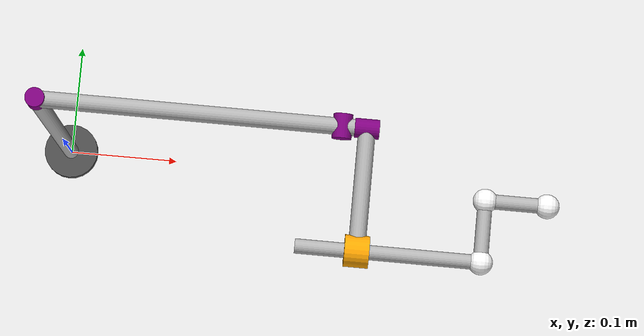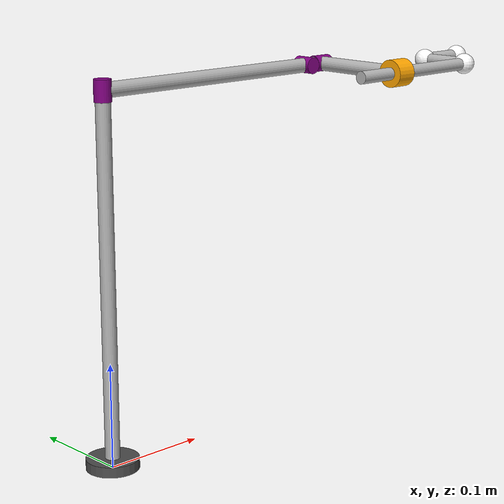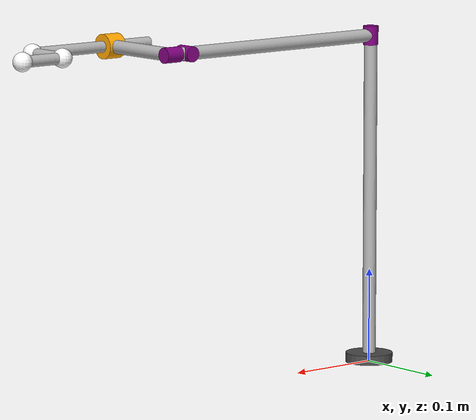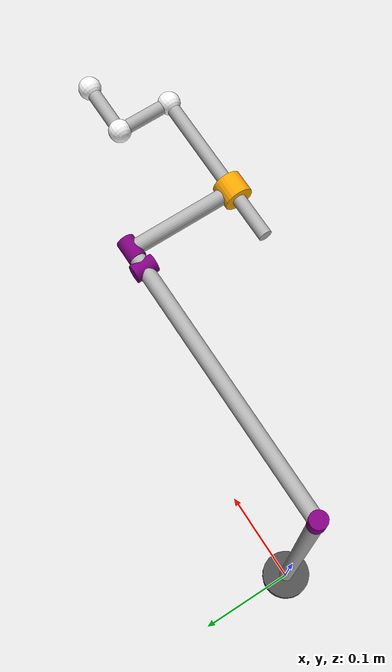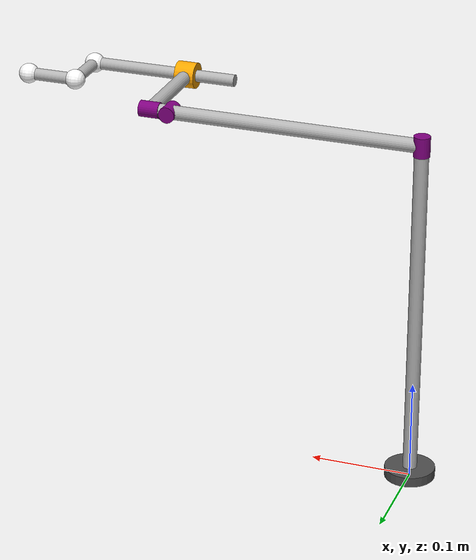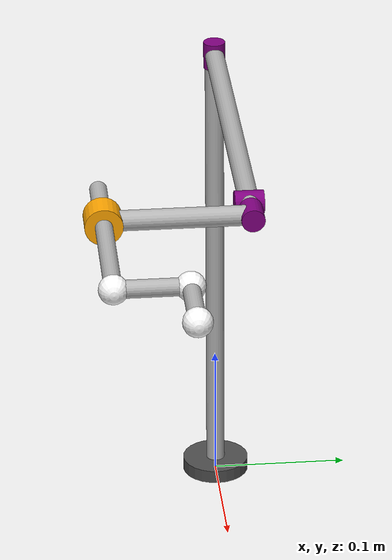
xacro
<?xml version="1.0"?>

<robot xmlns:xacro="http://www.ros.org/wiki/xacro" name="desktop_manipulator">

  <!-- ==================== PARAMETERS ==================== -->
  <xacro:property name="L1" value="0.35"/>
  <xacro:property name="L2" value="0.25"/>
  <xacro:property name="L3" value="0.02"/>
  <xacro:property name="L4" value="0.10"/>

  <!-- Visual radii (matching your PyVista code, converted to metres) -->
  <xacro:property name="base_height"       value="0.01"/>
  <xacro:property name="base_radius"        value="0.025"/>
  <xacro:property name="link_radius"       value="0.007"/>
  <xacro:property name="hub_radius"        value="0.008"/>
  <xacro:property name="hub_len"           value="0.020"/>
  <xacro:property name="teles_outer_radius" value="0.013"/>
  <xacro:property name="teles_inner_radius" value="0.006"/>
  <xacro:property name="teles_outer_len"   value="0.020"/>
  <xacro:property name="teles_inner_len"   value="0.150"/>
  <xacro:property name="ee_radius"         value="0.006"/>
  <xacro:property name="ball_radius"       value="0.010"/>

  <!-- Prismatic joint limits (cm -> m) -->
  <xacro:property name="d4_min" value="0.05"/>
  <xacro:property name="d4_max" value="0.15"/>

  <!-- Colours -->
  <xacro:property name="link_color_r" value="0.7"/>
  <xacro:property name="link_color_g" value="0.7"/>
  <xacro:property name="link_color_b" value="0.7"/>
  <xacro:property name="hub_color_r"  value="0.5"/>
  <xacro:property name="hub_color_g"  value="0.0"/>
  <xacro:property name="hub_color_b"  value="0.5"/>
  <xacro:property name="teles_outer_r" value="1.0"/>
  <xacro:property name="teles_outer_g" value="0.65"/>
  <xacro:property name="teles_outer_b" value="0.0"/>

  <!-- ==================== MATERIALS ==================== -->
  <material name="silver">
    <color rgba="0.7 0.7 0.7 1.0"/>
  </material>

  <material name="purple">
    <color rgba="0.5 0.0 0.5 1.0"/>
  </material>
  <material name="orange">
    <color rgba="1.0 0.65 0.0 1.0"/>
  </material>
  <material name="dark_grey">
    <color rgba="0.3 0.3 0.3 1.0"/>
  </material>
  <material name="red_transparent">
    <color rgba="1.0 0.0 0.0 0.4"/>
  </material>
  <material name="white">
    <color rgba="1.0 1.0 1.0 1.0"/>
  </material>

  <!-- ==================== LINKS AND JOINTS ==================== -->

  <!--
    base_link: the fixed base sitting on the table.
    The world-frame origin is at the bottom of link1 (the ground).
  -->
  <link name="base_link">
    <visual>
      <origin xyz="0 0 ${base_height/2}" rpy="0 0 0"/>
      <geometry>
        <cylinder radius="${base_radius}" length="${base_height}"/>
      </geometry>
      <material name="dark_grey"/>
    </visual>
  </link>

  <!--
    Joint 1: Revolute about Z-axis at the base.
    DH: a=0, alpha=0, d=L1, theta=theta1
    The joint sits at z=0 (base level). Link1 extends upward to z=L1.
  -->
  <joint name="joint1" type="revolute">
    <parent link="base_link"/>
    <child link="link1"/>
    <origin xyz="0 0 ${L1}" rpy="0 0 0"/>
    <axis xyz="0 0 1"/>
    <limit lower="${-pi}" upper="${pi}" effort="10" velocity="3.0"/>
  </joint>

  <!-- Link 1: vertical column from z=0 to z=L1 -->
  <link name="link1">
    <!-- The cylinder visual: centred at L1/2, along z -->
    <visual name="link1_rod">
      <origin xyz="0 0 ${-L1/2}" rpy="0 0 0"/>
      <geometry>
        <cylinder radius="${link_radius}" length="${L1}"/>
      </geometry>
      <material name="silver"/>
    </visual>

    <visual name="link2_rod">
      <origin xyz="${L2/2} 0 0" rpy="0 ${pi/2} 0"/>
      <geometry>
        <cylinder radius="${link_radius}" length="${L2}"/>
      </geometry>
      <material name="silver"/>
    </visual>

  </link>

  <!-- i moved the joint1_hub visual out from link1 purely for visual purpose, a
  and im connecting using a fixed joint-->
  <link name="joint1_hub">
    <visual name="joint1_hub">
      <origin xyz="0 0 0" rpy="0 0 0"/>
      <geometry>
        <cylinder radius="${hub_radius}" length="${hub_len}"/>
      </geometry>
      <material name="purple"/>
    </visual>
  </link>

  <joint name="link1_connect_joint1_hub" type="fixed">
    <parent link="link1"/>
    <child link="joint1_hub"/>
    <origin xyz="0 0 0" rpy="0 0 0"/>
  </joint>

  <!-- i moved the joint1_hub visual out from link1 purely for visual purpose -->

  <joint name="joint2" type="revolute">
    <parent link="link1"/>
    <child link="link2"/>
    <origin xyz="${L2} 0 0" rpy="${-pi/2} ${-pi/2} 0"/>
    <axis xyz="0 0 1"/>
    <limit lower="${-pi/2}" upper="${pi/2}" effort="10" velocity="3.0"/>
  </joint>

  <!-- Link 2: extends L2 along its local x-axis -->
  <link name="link2">

    <visual name="joint2_hub">
      <origin xyz="0 0 0" rpy="0 0 0"/>
      <geometry>
        <cylinder radius="${hub_radius}" length="${hub_len}"/>
      </geometry>
      <material name="purple"/>
    </visual>
  </link>

  <joint name="joint3" type="revolute">
    <parent link="link2"/>
    <child link="link3"/>
    <origin xyz="0 ${L3} 0" rpy="${-pi/2} ${pi/2} 0"/>
    <axis xyz="0 0 1"/>
    <limit lower="${-pi}" upper="${pi}" effort="10" velocity="3.0"/>
  </joint>

  <link name="link3">
    <!-- The short d=L3 segment along local z -->
    <visual name="link3_rod">
      <origin xyz="0 0 ${-L3/2}" rpy="0 0 0"/>
      <geometry>
        <cylinder radius="${link_radius}" length="${L3}"/>
      </geometry>
      <material name="silver"/>
    </visual>

    <!-- put the connection between joint3 and the outer telescope also under link3. -->
    <visual name="link3_rod_2">
      <origin xyz="${L4/2} 0 0" rpy="0 ${pi/2} 0"/>
      <geometry>
        <cylinder radius="${link_radius}" length="${L4}"/>
      </geometry>
      <material name="silver"/>
    </visual>
  </link>

  <!-- i moved the joint1_hub visual out from link3 purely for visual purpose, a
  and im connecting using a fixed joint-->
  <link name="joint3_hub">
    <visual name="joint3_hub">
      <origin xyz="0 0 0" rpy="0 0 0"/>
      <geometry>
        <cylinder radius="${hub_radius}" length="${hub_len}"/>
      </geometry>
      <material name="purple"/>
    </visual>
  </link>
  <joint name="link3_connect_joint3_hub" type="fixed">
    <parent link="link3"/>
    <child link="joint3_hub"/>
    <origin xyz="0 0 0" rpy="0 0 0"/>
  </joint>
  <!-- i moved the joint3_hub visual out from link3 purely for visual purpose -->

  <!-- i moved the telescope_outer visual out from link3 purely for visual purpose, a
  and im connecting using a fixed joint-->
  <link name="telescope_outer">
    <visual name="telescope_outer">
      <origin xyz="${L4} 0 0" rpy="0 0 0"/>
      <geometry>
        <cylinder radius="${teles_outer_radius}" length="${teles_outer_len}"/>
      </geometry>
      <material name="orange"/>
    </visual>
  </link>
  <joint name="link3_connect_telescope_outer" type="fixed">
    <parent link="link3"/>
    <child link="telescope_outer"/>
    <origin xyz="0 0 0" rpy="0 0 0"/>
  </joint>
  <!-- i moved the telescope_outer visual out from link3 purely for visual purpose -->

  <joint name="joint4" type="prismatic">
    <parent link="link3"/>
    <child link="link4"/>
    <origin xyz="${L4} 0 0" rpy="0 0 0"/>
    <axis xyz="0 0 1"/>
    <limit lower="${d4_min}" upper="${d4_max}" effort="10" velocity="0.5"/>
  </joint>

  <link name="link4">
    <visual name="inner_tube">
      <origin xyz="0 0 ${-teles_inner_len/2}" rpy="0 0 0"/>
      <geometry>
        <cylinder radius="${teles_inner_radius}" length="${teles_inner_len}"/>
      </geometry>
      <material name="silver"/>
    </visual>
  </link>

  <joint name="ee_fixed" type="fixed">
    <parent link="link4"/>
    <child link="end_effector"/>
    <origin xyz="${-L4/2} 0 ${L4/2}" rpy="0 0 0"/>
  </joint>

  <link name="end_effector">
    <!-- Horizontal arm of the L: from origin to (-L4/2, 0, 0) -->
    <visual name="ee_horizontal">
      <origin xyz="0 0 ${-L4/4}" rpy="0 0 0"/>
      <geometry>
        <cylinder radius="${ee_radius}" length="${L4/2}"/>
      </geometry>
      <material name="silver"/>
    </visual>
    <!-- Vertical arm of the L: from (-L4/2, 0, 0) to (-L4/2, 0, L4/2) -->
    <visual name="ee_vertical">
      <origin xyz="${L4/4} 0 ${-L4/2}" rpy="0 ${pi/2} 0"/>
      <geometry>
        <cylinder radius="${ee_radius}" length="${L4/2}"/>
      </geometry>
      <material name="silver"/>
    </visual>
    <!-- Ball at the corner of the L -->
    <visual name="ee_ball_corner">
      <origin xyz="0 0 ${-L4/2}" rpy="0 0 0"/>
      <geometry>
        <sphere radius="${ball_radius}"/>
      </geometry>
      <material name="white"/>
    </visual>
    <!-- Ball at the tip of the L (the actual end-effector point) -->
    <visual name="ee_ball_tip">
      <origin xyz="0 0 0" rpy="0 0 0"/>
      <geometry>
        <sphere radius="${ball_radius}"/>
      </geometry>
      <material name="white"/>
    </visual>
    <!-- Ball at the top of the telescope -->
    <visual name="ee_ball_top">
      <origin xyz="${L4/2} 0 ${-L4/2}" rpy="0 0 0"/>
      <geometry>
        <sphere radius="${ball_radius}"/>
      </geometry>
      <material name="white"/>
    </visual>
  </link>

  <ros2_control name="manipulator_system" type="system">
    <hardware>
      <plugin>mock_components/GenericSystem</plugin>
    </hardware>
    <joint name="joint1">
      <command_interface name="position"/>
      <state_interface name="position"/>
    </joint>
    <joint name="joint2">
      <command_interface name="position"/>
      <state_interface name="position"/>
    </joint>
    <joint name="joint3">
      <command_interface name="position"/>
      <state_interface name="position"/>
    </joint>
    <joint name="joint4">
      <command_interface name="position"/>
      <state_interface name="position"/>
    </joint>
  </ros2_control>

</robot>
